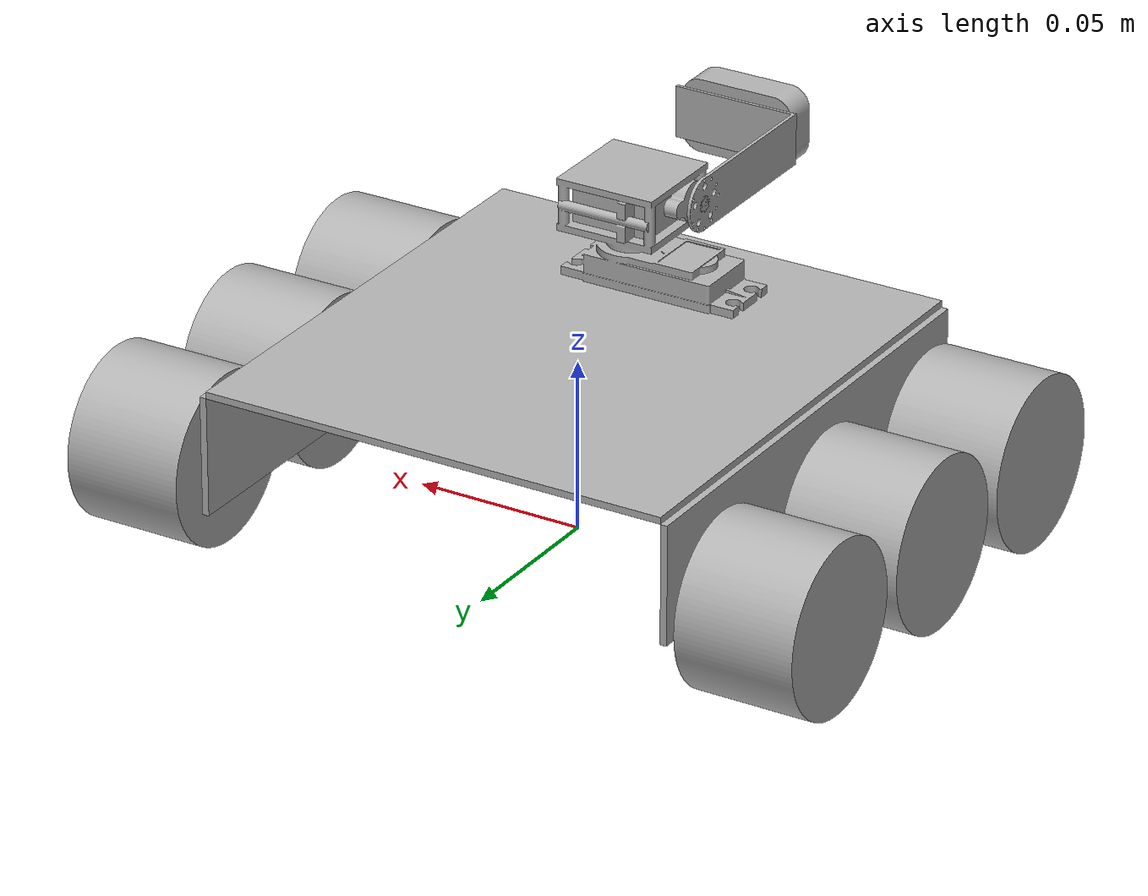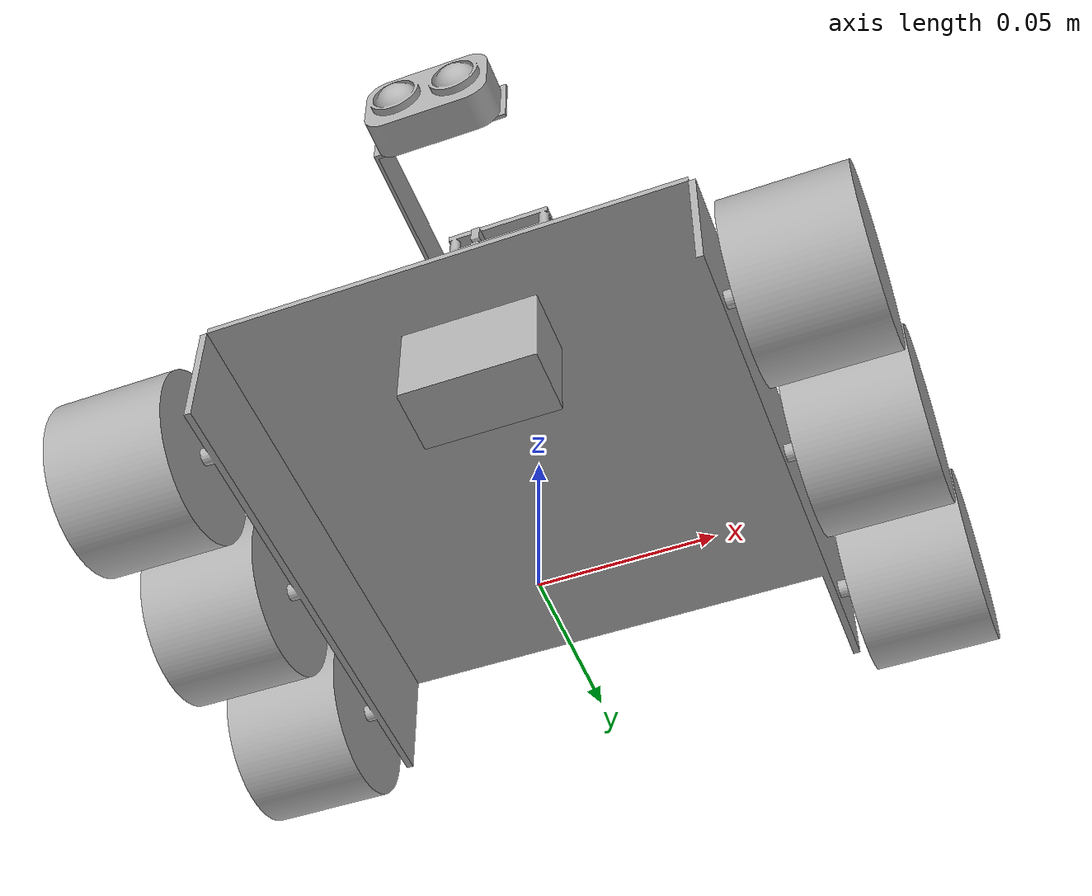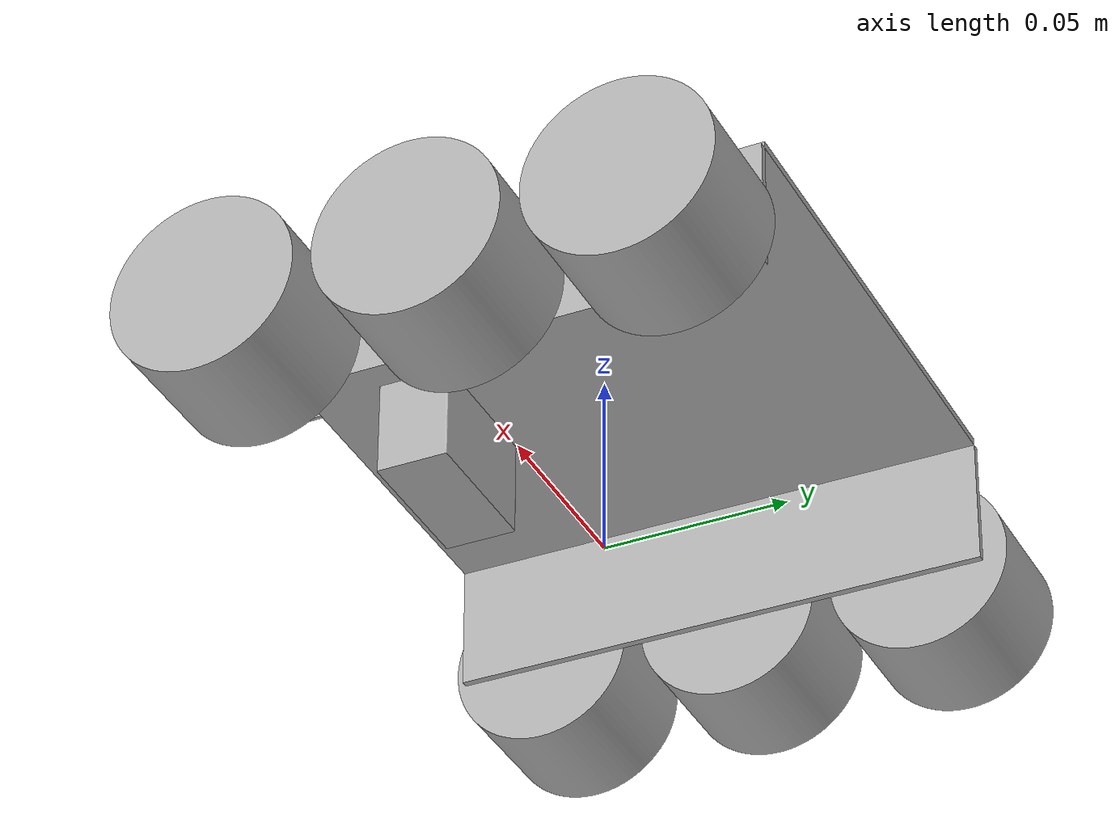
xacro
<?xml version="1.0" ?>
<robot name="slam_robot" xmlns:xacro="http://www.ros.org/wiki/xacro">

<xacro:include filename="$(find slam_robot)/model/materials.xacro" />
<xacro:include filename="$(find slam_robot)/model/slam_robot.gazebo" />

<link name="base_link">
  <inertial>
    <origin xyz="0.0 0.0 0.0" rpy="0 0 0"/>  <!-- CoM zentrieren -->

    <mass value="10.0"/> <inertia ixx="0.1" iyy="0.1" izz="0.1" ixy="0.0" iyz="0.0" ixz="0.0"/>
  </inertial>

  <visual>
    <origin xyz="0 0 0" rpy="0 0 0"/>
    <geometry>
      <mesh filename="file://$(find slam_robot)/meshes/base_link.stl" scale="0.001 0.001 0.001"/>
    </geometry>
    <material name="silver"/>
  </visual>
  <collision>
    <origin xyz="0 0 0" rpy="0 0 0"/>
    <geometry>
      <mesh filename="file://$(find slam_robot)/meshes/base_link.stl" scale="0.001 0.001 0.001"/>
    </geometry>
  </collision>
</link>

<!-- IMU LINK (MPU6050 + QMC5883L in real hardware) -->
<link name="imu_link">
  <inertial>
    <origin xyz="0 0 0" rpy="0 0 0"/>
    <mass value="0.005"/>
    <inertia ixx="0.000001" iyy="0.000001" izz="0.000001"
             ixy="0" iyz="0" ixz="0"/>
  </inertial>
</link>

<joint name="imu_mount_joint" type="fixed">
  <origin xyz="0 0 0.02" rpy="0 0 0"/>
  <parent link="base_link"/>
  <child link="imu_link"/>
</joint>

<link name="MG995_1">
  <inertial>
    <origin xyz="0.00018178353418634162 -0.010000003571498842 -0.008552466740676883" rpy="0 0 0"/>
    <mass value="0.001"/>
    <inertia ixx="0.000001" iyy="0.000001" izz="0.000001" ixy="0" iyz="0" ixz="0"/>
  </inertial>
  <visual>
    <origin xyz="-0.0 0.035 -0.054" rpy="0 0 0"/>
    <geometry>
      <mesh filename="file://$(find slam_robot)/meshes/MG995.stl" scale="0.001 0.001 0.001"/>
    </geometry>
    <material name="silver"/>
  </visual>
  <collision>
    <origin xyz="-0.0 0.035 -0.054" rpy="0 0 0"/>
    <geometry>
      <mesh filename="file://$(find slam_robot)/meshes/MG995.stl" scale="0.001 0.001 0.001"/>
    </geometry>
  </collision>
</link>

<link name="LeftMotor_1">
  <inertial>
    <origin xyz="-0.017499999999999988 8.195639167318802e-10 3.576278717609682e-10" rpy="0 0 0"/>
    <mass value="0.5394703634836225"/>
    <inertia ixx="0.000169" iyy="0.000139" izz="0.000139" ixy="0.0" iyz="-0.0" ixz="0.0"/>
  </inertial>
  <visual>
    <origin xyz="0.077 -0.055 -0.02501" rpy="0 0 0"/>
    <geometry>
      <mesh filename="file://$(find slam_robot)/meshes/LeftMotor.stl" scale="0.001 0.001 0.001"/>
    </geometry>
    <material name="silver"/>
  </visual>
  <collision>
    <origin xyz="0.077 -0.055 -0.02501" rpy="0 0 0"/>
    <geometry>
       <mesh filename="file://$(find slam_robot)/meshes/LeftMotor.stl" scale="0.001 0.001 0.001"/>
    </geometry>
  </collision>
</link>

<link name="LeftMiddleWheel_1">
  <inertial>
    <origin xyz="-0.017499999999999988 4.5493038643815916e-17 2.5331974018438785e-10" rpy="0 0 0"/>
    <mass value="0.5394703634836225"/>
    <inertia ixx="0.000169" iyy="0.000139" izz="0.000139" ixy="0.0" iyz="-0.0" ixz="0.0"/>
  </inertial>
  <visual>
    <origin xyz="0.077 -0.0 -0.02501" rpy="0 0 0"/>
    <geometry>
      <mesh filename="file://$(find slam_robot)/meshes/LeftMiddleWheel.stl" scale="0.001 0.001 0.001"/>
    </geometry>
    <material name="silver"/>
  </visual>
  <collision>
    <origin xyz="0.077 -0.0 -0.02501" rpy="0 0 0"/>
    <geometry>
      <mesh filename="file://$(find slam_robot)/meshes/LeftMiddleWheel.stl" scale="0.001 0.001 0.001"/>
    </geometry>
  </collision>
</link>

<link name="LeftFrontWheel_1">
  <inertial>
    <origin xyz="-0.017499999999999988 -8.195638750985168e-10 3.2782554795773855e-10" rpy="0 0 0"/>
    <mass value="0.5394703634836222"/>
    <inertia ixx="0.000169" iyy="0.000139" izz="0.000139" ixy="-0.0" iyz="0.0" ixz="0.0"/>
  </inertial>
  <visual>
    <origin xyz="0.077 0.055 -0.025" rpy="0 0 0"/>
    <geometry>
      <mesh filename="file://$(find slam_robot)/meshes/LeftFrontWheel.stl" scale="0.001 0.001 0.001"/>
    </geometry>
    <material name="silver"/>
  </visual>
  <collision>
    <origin xyz="0.077 0.055 -0.025" rpy="0 0 0"/>
    <geometry>
      <mesh filename="file://$(find slam_robot)/meshes/LeftFrontWheel.stl" scale="0.001 0.001 0.001"/>
    </geometry>
  </collision>
</link>

<link name="RightFrontWheel_1">
  <inertial>
    <origin xyz="0.017499999999999988 -8.195638750985168e-10 3.2782554795773855e-10" rpy="0 0 0"/>
    <mass value="0.5394703634836222"/>
    <inertia ixx="0.000169" iyy="0.000139" izz="0.000139" ixy="0.0" iyz="0.0" ixz="0.0"/>
  </inertial>
  <visual>
    <origin xyz="-0.077 0.055 -0.025" rpy="0 0 0"/>
    <geometry>
      <mesh filename="file://$(find slam_robot)/meshes/RightFrontWheel.stl" scale="0.001 0.001 0.001"/>
    </geometry>
    <material name="silver"/>
  </visual>
  <collision>
    <origin xyz="-0.077 0.055 -0.025" rpy="0 0 0"/>
    <geometry>
      <mesh filename="file://$(find slam_robot)/meshes/RightFrontWheel.stl" scale="0.001 0.001 0.001"/>
    </geometry>
  </collision>
</link>

<link name="RightMiddleWheel_1">
  <inertial>
    <origin xyz="0.017499999999999988 4.5493038643815916e-17 2.5331974018438785e-10" rpy="0 0 0"/>
    <mass value="0.5394703634836225"/>
    <inertia ixx="0.000169" iyy="0.000139" izz="0.000139" ixy="-0.0" iyz="-0.0" ixz="0.0"/>
  </inertial>
  <visual>
    <origin xyz="-0.077 -0.0 -0.02501" rpy="0 0 0"/>
    <geometry>
      <mesh filename="file://$(find slam_robot)/meshes/RightMiddleWheel.stl" scale="0.001 0.001 0.001"/>
    </geometry>
    <material name="silver"/>
  </visual>
  <collision>
    <origin xyz="-0.077 -0.0 -0.02501" rpy="0 0 0"/>
    <geometry>
      <mesh filename="file://$(find slam_robot)/meshes/RightMiddleWheel.stl" scale="0.001 0.001 0.001"/>
    </geometry>
  </collision>
</link>

<link name="RightMotor_1">
  <inertial>
    <origin xyz="0.017500000000000016 8.195639167318802e-10 3.576278717609682e-10" rpy="0 0 0"/>
    <mass value="0.5394703634836225"/>
    <inertia ixx="0.000169" iyy="0.000139" izz="0.000139" ixy="0.0" iyz="-0.0" ixz="0.0"/>
  </inertial>
  <visual>
    <origin xyz="-0.077 -0.055 -0.02501" rpy="0 0 0"/>
    <geometry>
      <mesh filename="file://$(find slam_robot)/meshes/RightMotor.stl" scale="0.001 0.001 0.001"/>
    </geometry>
    <material name="silver"/>
  </visual>
  <collision>
    <origin xyz="-0.077 -0.055 -0.02501" rpy="0 0 0"/>
    <geometry>
       <mesh filename="file://$(find slam_robot)/meshes/RightMotor.stl" scale="0.001 0.001 0.001"/>
    </geometry>
  </collision>
</link>

<link name="PanPart_1">
  <inertial>
    <origin xyz="7.735593309712158e-07 3.372936091555062e-05 0.012081173443687296" rpy="0 0 0"/>
    <mass value="0.001"/>
    <inertia ixx="0.000001" iyy="0.000001" izz="0.000001" ixy="0" iyz="0" ixz="0"/>
  </inertial>
  <visual>
    <origin xyz="-0.0101 0.045 -0.0666" rpy="0 0 0"/>
    <geometry>
      <mesh filename="file://$(find slam_robot)/meshes/PanPart.stl" scale="0.001 0.001 0.001"/>
    </geometry>
    <material name="silver"/>
  </visual>
  <collision>
    <origin xyz="-0.0101 0.045 -0.0666" rpy="0 0 0"/>
    <geometry>
      <mesh filename="file://$(find slam_robot)/meshes/PanPart.stl" scale="0.001 0.001 0.001"/>
    </geometry>
  </collision>
</link>

<link name="MG90S_1">
  <inertial>
    <origin xyz="-0.0012642843683621507 -0.00035463849594528224 -0.005750000639991523" rpy="0 0 0"/>
    <mass value="0.001"/>
    <inertia ixx="0.000001" iyy="0.000001" izz="0.000001" ixy="0" iyz="0" ixz="0"/>
  </inertial>
  <visual>
    <origin xyz="-0.0101 0.045 -0.0861" rpy="0 0 0"/>
    <geometry>
      <mesh filename="file://$(find slam_robot)/meshes/MG90S.stl" scale="0.001 0.001 0.001"/>
    </geometry>
    <material name="silver"/>
  </visual>
  <collision>
    <origin xyz="-0.0101 0.045 -0.0861" rpy="0 0 0"/>
    <geometry>
      <mesh filename="file://$(find slam_robot)/meshes/MG90S.stl" scale="0.001 0.001 0.001"/>
    </geometry>
  </collision>
</link>

<link name="TiltPart_1">
  <inertial>
    <origin xyz="0.00812846455655557 -0.03307294922540972 -5.5186871191603704e-05" rpy="0 0 0"/>
    <mass value="0.001"/>
    <inertia ixx="0.000001" iyy="0.000001" izz="0.000001" ixy="0" iyz="0" ixz="0"/>
  </inertial>
  <visual>
    <origin xyz="0.0094 0.05075 -0.08034" rpy="0 0 0"/>
    <geometry>
      <mesh filename="file://$(find slam_robot)/meshes/TiltPart.stl" scale="0.001 0.001 0.001"/>
    </geometry>
    <material name="silver"/>
  </visual>
  <collision>
    <origin xyz="0.0094 0.05075 -0.08034" rpy="0 0 0"/>
    <geometry>
      <mesh filename="file://$(find slam_robot)/meshes/TiltPart.stl" scale="0.001 0.001 0.001"/>
    </geometry>
  </collision>
</link>

<link name="TFLunaBenewake_1">
  <inertial>
    <origin xyz="2.2363284488124968e-10 -0.005554543875903067 -3.087080366198647e-07" rpy="0 0 0"/>
    <mass value="0.001"/>
    <inertia ixx="0.000001" iyy="0.000001" izz="0.000001" ixy="0" iyz="0" ixz="0"/>
  </inertial>
  <visual>
    <origin xyz="-0.0096 0.10075 -0.080268" rpy="0 0 0"/>
    <geometry>
      <mesh filename="file://$(find slam_robot)/meshes/TFLunaBenewake.stl" scale="0.001 0.001 0.001"/>
    </geometry>
    <material name="silver"/>
  </visual>
  <collision>
    <origin xyz="-0.0096 0.10075 -0.080268" rpy="0 0 0"/>
    <geometry>
      <mesh filename="file://$(find slam_robot)/meshes/TFLunaBenewake.stl" scale="0.001 0.001 0.001"/>
    </geometry>
  </collision>
</link>

<joint name="Starr 1" type="fixed">
  <origin xyz="0.0 -0.035 0.054" rpy="0 0 0"/>
  <parent link="base_link"/>
  <child link="MG995_1"/>
</joint>

<joint name="LeftWheelMotion" type="continuous">
  <origin xyz="-0.077 0.055 0.02501" rpy="0 0 0"/>  <!-- rpy entfernen -->
  <parent link="base_link"/>
  <child link="LeftMotor_1"/>
   <axis xyz="1.0 0.0 0.0"/>  <!-- oder -1, je nach Ausrichtung testen -->     <!-- eig. -1.0 -0.0 -0.0 -->
</joint>

<joint name="Starr 3" type="continuous">
  <origin xyz="-0.077 0.0 0.02501" rpy="0 0 0"/>
  <parent link="base_link"/>
  <child link="LeftMiddleWheel_1"/>
  <axis xyz="1.0 -0.0 -0.0"/>
</joint>

<joint name="Starr 4" type="continuous">
  <origin xyz="-0.077 -0.055 0.025" rpy="0 0 0"/>
  <parent link="base_link"/>
  <child link="LeftFrontWheel_1"/>
  <axis xyz="1.0 -0.0 -0.0"/>
</joint>

<joint name="Starr 5" type="continuous">
  <origin xyz="0.077 -0.055 0.025" rpy="0 0 0"/>
  <parent link="base_link"/>
  <child link="RightFrontWheel_1"/>
  <axis xyz="1.0 0.0 0.0"/>
</joint>

<joint name="Starr 6" type="continuous">
  <origin xyz="0.077 0.0 0.02501" rpy="0 0 0"/>
  <parent link="base_link"/>
  <child link="RightMiddleWheel_1"/>
  <axis xyz="1.0 0.0 0.0"/>
</joint>

<joint name="RightWheelMotion" type="continuous">
  <origin xyz="0.077 0.055 0.02501" rpy="0 0 0"/>
  <parent link="base_link"/>
  <child link="RightMotor_1"/>
  <axis xyz="1.0 0.0 0.0"/>   <!-- eig. 1.0 0.0 0.0 -->
</joint>

<joint name="PanMotion" type="revolute">
  <origin xyz="0.0101 -0.01 0.0126" rpy="0 0 0"/>
  <parent link="MG995_1"/>
  <child link="PanPart_1"/>
  <axis xyz="0.0 -0.0 1.0"/>
  <limit upper="0.959931" lower="-0.959931" effort="100" velocity="100"/>
</joint>

<joint name="Starr 9" type="fixed">
  <origin xyz="0.0 0.0 0.0195" rpy="0 0 0"/>
  <parent link="PanPart_1"/>
  <child link="MG90S_1"/>
</joint>

<joint name="TiltMotion" type="revolute">
  <origin xyz="-0.0195 -0.00575 -0.00576" rpy="0 0 0"/>
  <parent link="MG90S_1"/>
  <child link="TiltPart_1"/>
  <axis xyz="-1.0 0.0 0.0"/>
  <limit upper="0.872665" lower="-0.523599" effort="100" velocity="100"/>
</joint>

<joint name="Starr 11" type="fixed">
  <origin xyz="0.019 -0.05 -7.2e-05" rpy="0 0 0"/>
  <parent link="TiltPart_1"/>
  <child link="TFLunaBenewake_1"/>
</joint>

<!-- ros2_control: Gazebo System                    -->
<ros2_control name="GazeboSystem" type="system">
  <hardware>
    <plugin>gazebo_ros2_control/GazeboSystem</plugin>
  </hardware>

  <!-- Antriebsräder (Velocity-Command) -->
  <joint name="LeftWheelMotion">
    <command_interface name="velocity"/>
    <state_interface name="position"/>
    <state_interface name="velocity"/>
  </joint>

  <joint name="RightWheelMotion">
    <command_interface name="velocity"/>
    <state_interface name="position"/>
    <state_interface name="velocity"/>
  </joint>

  <!-- Pan-Tilt (Position-Command) -->
  <joint name="PanMotion">
    <command_interface name="position"/>
    <state_interface name="position"/>
    <state_interface name="velocity"/>
  </joint>

  <joint name="TiltMotion">
    <command_interface name="position"/>
    <state_interface name="position"/>
    <state_interface name="velocity"/>
  </joint>
</ros2_control>

</robot>

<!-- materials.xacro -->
<robot name="slam_robot" xmlns:xacro="http://www.ros.org/wiki/xacro" >

<material name="silver">
  <color rgba="0.700 0.700 0.700 1.000"/>
</material>

</robot>

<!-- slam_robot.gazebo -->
<robot name="slam_robot" xmlns:xacro="http://www.ros.org/wiki/xacro" >

<xacro:property name="body_color" value="Gazebo/Gray" />

<gazebo>
  <plugin name="gazebo_ros2_control"
        filename="libgazebo_ros2_control.so">
  <parameters>$(find slam_robot)/config/controllers.yml</parameters>
</plugin>
</gazebo>
<gazebo reference="base_link">
  <material>${body_color}</material>
  <mu1>0.2</mu1>
  <mu2>0.2</mu2>
  <self_collide>true</self_collide>
  <gravity>true</gravity>
</gazebo>

<gazebo reference="MG995_1">
  <material>Gazebo/Black</material>
  <mu1>0.2</mu1>
  <mu2>0.2</mu2>
  <self_collide>true</self_collide>
</gazebo>

<gazebo reference="LeftMotor_1">
  <material>Gazebo/Blue</material>
  <mu1>1.0</mu1>
  <mu2>1.0</mu2>
  <self_collide>true</self_collide>
</gazebo>

<gazebo reference="LeftMiddleWheel_1">
  <material>Gazebo/Blue</material>
  <mu1>0.0</mu1>
  <mu2>0.0</mu2>
  <self_collide>true</self_collide>
</gazebo>

<gazebo reference="LeftFrontWheel_1">
  <material>Gazebo/Blue</material>
  <mu1>0.0</mu1>
  <mu2>0.0</mu2>
  <self_collide>true</self_collide>
</gazebo>

<gazebo reference="RightFrontWheel_1">
  <material>Gazebo/Blue</material>
  <mu1>0.0</mu1>
  <mu2>0.0</mu2>
  <self_collide>true</self_collide>
</gazebo>

<gazebo reference="RightMiddleWheel_1">
  <material>Gazebo/Blue</material>
  <mu1>0.0</mu1>
  <mu2>0.0</mu2>
  <self_collide>true</self_collide>
</gazebo>

<gazebo reference="RightMotor_1">
  <material>Gazebo/Blue</material>
  <mu1>1.0</mu1>
  <mu2>1.0</mu2>
  <self_collide>true</self_collide>
</gazebo>

<gazebo reference="PanPart_1">
  <material>${body_color}</material>
  <mu1>0.2</mu1>
  <mu2>0.2</mu2>
  <self_collide>true</self_collide>
</gazebo>

<gazebo reference="MG90S_1">
  <material>Gazebo/Black</material>
  <mu1>0.2</mu1>
  <mu2>0.2</mu2>
  <self_collide>true</self_collide>
</gazebo>

<gazebo reference="TiltPart_1">
  <material>${body_color}</material>
  <mu1>0.2</mu1>
  <mu2>0.2</mu2>
  <self_collide>true</self_collide>
</gazebo>

<gazebo reference="TFLunaBenewake_1">
  <material>Gazebo/Black</material>
  <mu1>0.2</mu1>
  <mu2>0.2</mu2>
  <self_collide>true</self_collide>
</gazebo>

<!-- TF-Luna als 1-Punkt-LaserScan-Sensor           -->
<gazebo reference="TFLunaBenewake_1">
  <sensor name="tfluna_sensor" type="ray">
    <ray>
      <scan>
        <horizontal>
          <samples>1</samples>
          <resolution>1</resolution>
          <min_angle>0</min_angle>
          <max_angle>0</max_angle>
        </horizontal>
        <vertical>
          <samples>1</samples>
          <resolution>1</resolution>
          <min_angle>0</min_angle>
          <max_angle>0</max_angle>
        </vertical>
      </scan>
      <range>
        <min>0.2</min>
        <max>8.0</max>
        <resolution>0.01</resolution>
        <noise>
          <type>gaussian</type>
          <mean>0.0</mean>
          <stddev>0.01</stddev>
        </noise>
      </range>
    </ray>
    <update_rate>100</update_rate>
    <plugin name="tfluna_plugin" filename="libgazebo_ros_ray_sensor.so">
      <ros>
        <remapping>~/out:=/tfluna/scan</remapping>
      </ros>
      <output_type>sensor_msgs/LaserScan</output_type>
    </plugin>
  </sensor>
</gazebo>

<!-- IMU-Sensor (simuliert MPU6050)                 -->
<gazebo reference="imu_link">
  <sensor name="imu_sensor" type="imu">
    <always_on>true</always_on>
    <update_rate>200</update_rate>
    <plugin name="imu_plugin" filename="libgazebo_ros_imu_sensor.so">
      <ros>
        <namespace>/</namespace>
        <remapping>~/out:=/imu/data</remapping>
      </ros>
      <frame_name>imu_link</frame_name>
      <initial_orientation_as_reference>false</initial_orientation_as_reference>
    </plugin>
  </sensor>
</gazebo>

</robot>
